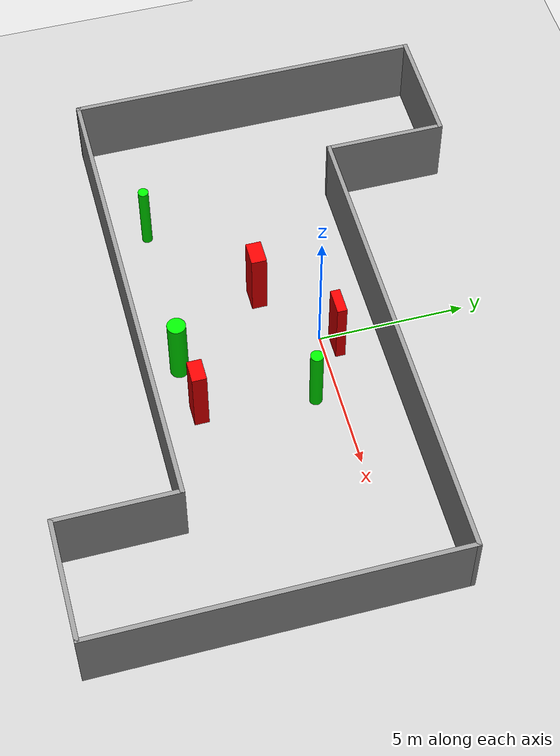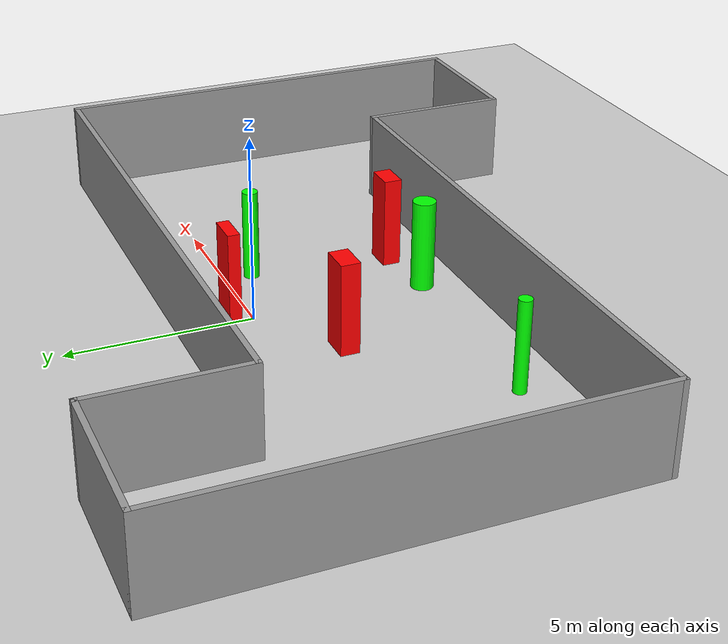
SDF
<sdf version="1.7">
 <world name="default">
  <light name="sun" type="directional">
   <pose>0 0 10 0 -0 0</pose>
   <diffuse>0.8 0.8 0.8 1</diffuse>
   <specular>0.2 0.2 0.2 1</specular>
   <attenuation>
    <range>1000</range>
    <constant>0.9</constant>
    <linear>0.01</linear>
    <quadratic>0.001</quadratic>
   </attenuation>
   <direction>-0.5 0.1 -0.9</direction>
   <spot><inner_angle>0</inner_angle><outer_angle>0</outer_angle><falloff>0</falloff></spot>
  </light>
  <model name="ground_plane">
   <static>1</static>
   <link name="link">
    <collision name="collision">
     <geometry><plane><normal>0 0 1</normal><size>100 100</size></plane></geometry>
     <surface>
      <contact><collide_bitmask>65535</collide_bitmask></contact>
      <friction><ode><mu>100</mu><mu2>50</mu2></ode></friction>
     </surface>
    </collision>
    <visual name="visual">
     <cast_shadows>0</cast_shadows>
     <geometry><plane><normal>0 0 1</normal><size>100 100</size></plane></geometry>
     <material>
      <script><uri>file://media/materials/scripts/gazebo.material</uri><name>Gazebo/Grey</name></script>
     </material>
    </visual>
   </link>
  </model>
  <gravity>0 0 -9.8</gravity>
  <magnetic_field>6e-06 2.3e-05 -4.2e-05</magnetic_field>
  <atmosphere type="adiabatic"/>
  <physics type="ode">
   <max_step_size>0.001</max_step_size>
   <real_time_factor>1</real_time_factor>
   <real_time_update_rate>1000</real_time_update_rate>
  </physics>
  <scene><ambient>0.4 0.4 0.4 1</ambient><background>0.7 0.7 0.7 1</background><shadows>1</shadows></scene>
  <spherical_coordinates>
   <surface_model>EARTH_WGS84</surface_model>
   <latitude_deg>0</latitude_deg>
   <longitude_deg>0</longitude_deg>
   <elevation>0</elevation>
   <heading_deg>0</heading_deg>
  </spherical_coordinates>
  <model name="my_base_walls">
   <link name="Wall_13">
    <collision name="Wall_13_Collision">
     <geometry><box><size>12.15 0.15 2.5</size></box></geometry>
     <pose>0 0 1.25 0 -0 0</pose>
    </collision>
    <visual name="Wall_13_Visual">
     <pose>0 0 1.25 0 -0 0</pose>
     <geometry><box><size>12.15 0.15 2.5</size></box></geometry>
     <material>
      <script><uri>file://media/materials/scripts/gazebo.material</uri><name>Gazebo/Grey</name></script>
      <ambient>1 1 1 1</ambient>
     </material>
     <meta><layer>0</layer></meta>
    </visual>
    <pose>10 -2 0 0 -0 1.5708</pose>
   </link>
   <link name="Wall_15">
    <collision name="Wall_15_Collision">
     <geometry><box><size>16.15 0.15 2.5</size></box></geometry>
     <pose>0 0 1.25 0 -0 0</pose>
    </collision>
    <visual name="Wall_15_Visual">
     <pose>0 0 1.25 0 -0 0</pose>
     <geometry><box><size>16.15 0.15 2.5</size></box></geometry>
     <material>
      <script><uri>file://media/materials/scripts/gazebo.material</uri><name>Gazebo/Grey</name></script>
      <ambient>1 1 1 1</ambient>
     </material>
     <meta><layer>0</layer></meta>
    </visual>
    <pose>2 4 0 0 -0 3.14159</pose>
   </link>
   <link name="Wall_17">
    <collision name="Wall_17_Collision">
     <geometry><box><size>4.15 0.15 2.5</size></box></geometry>
     <pose>0 0 1.25 0 -0 0</pose>
    </collision>
    <visual name="Wall_17_Visual">
     <pose>0 0 1.25 0 -0 0</pose>
     <geometry><box><size>4.15 0.15 2.5</size></box></geometry>
     <material>
      <script><uri>file://media/materials/scripts/gazebo.material</uri><name>Gazebo/Grey</name></script>
      <ambient>1 1 1 1</ambient>
     </material>
     <meta><layer>0</layer></meta>
    </visual>
    <pose>6 -6 0 0 -0 -1.5708</pose>
   </link>
   <link name="Wall_19">
    <collision name="Wall_19_Collision">
     <geometry><box><size>12.15 0.15 2.5</size></box></geometry>
     <pose>0 0 1.25 0 -0 0</pose>
    </collision>
    <visual name="Wall_19_Visual">
     <pose>0 0 1.25 0 -0 0</pose>
     <geometry><box><size>12.15 0.15 2.5</size></box></geometry>
     <material>
      <script><uri>file://media/materials/scripts/gazebo.material</uri><name>Gazebo/Grey</name></script>
      <ambient>1 1 1 1</ambient>
     </material>
     <meta><layer>0</layer></meta>
    </visual>
    <pose>-10 2 0 0 -0 1.5708</pose>
   </link>
   <link name="Wall_21">
    <collision name="Wall_21_Collision">
     <geometry><box><size>4.15 0.15 2.5</size></box></geometry>
     <pose>0 0 1.25 0 -0 0</pose>
    </collision>
    <visual name="Wall_21_Visual">
     <pose>0 0 1.25 0 -0 0</pose>
     <geometry><box><size>4.15 0.15 2.5</size></box></geometry>
     <material>
      <script><uri>file://media/materials/scripts/gazebo.material</uri><name>Gazebo/Grey</name></script>
      <ambient>1 1 1 1</ambient>
     </material>
     <meta><layer>0</layer></meta>
    </visual>
    <pose>-8 8 0 0 -0 0</pose>
   </link>
   <link name="Wall_23">
    <collision name="Wall_23_Collision">
     <geometry><box><size>4.15 0.15 2.5</size></box></geometry>
     <pose>0 0 1.25 0 -0 0</pose>
    </collision>
    <visual name="Wall_23_Visual">
     <pose>0 0 1.25 0 -0 0</pose>
     <geometry><box><size>4.15 0.15 2.5</size></box></geometry>
     <material>
      <script><uri>file://media/materials/scripts/gazebo.material</uri><name>Gazebo/Grey</name></script>
      <ambient>1 1 1 1</ambient>
     </material>
     <meta><layer>0</layer></meta>
    </visual>
    <pose>-6 6 0 0 -0 -1.5708</pose>
   </link>
   <link name="Wall_25">
    <collision name="Wall_25_Collision">
     <geometry><box><size>4.15 0.15 2.5</size></box></geometry>
     <pose>0 0 1.25 0 -0 0</pose>
    </collision>
    <visual name="Wall_25_Visual">
     <pose>0 0 1.25 0 -0 0</pose>
     <geometry><box><size>4.15 0.15 2.5</size></box></geometry>
     <material>
      <script><uri>file://media/materials/scripts/gazebo.material</uri><name>Gazebo/Grey</name></script>
      <ambient>1 1 1 1</ambient>
     </material>
     <meta><layer>0</layer></meta>
    </visual>
    <pose>8 -8 0 0 -0 0</pose>
   </link>
   <link name="Wall_9">
    <collision name="Wall_9_Collision">
     <geometry><box><size>16.15 0.15 2.5</size></box></geometry>
     <pose>0 0 1.25 0 -0 0</pose>
    </collision>
    <visual name="Wall_9_Visual">
     <pose>0 0 1.25 0 -0 0</pose>
     <geometry><box><size>16.15 0.15 2.5</size></box></geometry>
     <material>
      <script><uri>file://media/materials/scripts/gazebo.material</uri><name>Gazebo/Grey</name></script>
      <ambient>1 1 1 1</ambient>
     </material>
     <meta><layer>0</layer></meta>
    </visual>
    <pose>-2 -4 0 0 -0 3.14159</pose>
   </link>
   <static>1</static>
   <pose>-0 -2 0 0 -0 0</pose>
  </model>
  <model name="cylinder1">
   <static>1</static>
   <link name="link">
    <inertial>
     <mass>1</mass>
     <inertia><ixx>0.5</ixx><ixy>0</ixy><ixz>0</ixz><iyy>0.5</iyy><iyz>0</iyz><izz>1</izz></inertia>
    </inertial>
    <collision name="collision">
     <geometry><cylinder><radius>0.21430372901644684</radius><length>2.5</length></cylinder></geometry>
    </collision>
    <visual name="visual">
     <geometry><cylinder><radius>0.21430372901644684</radius><length>2.5</length></cylinder></geometry>
     <material>
      <ambient>0 1 0 1</ambient>
      <diffuse>0 1 0 1</diffuse>
      <specular>0.1 0.1 0.1 1</specular>
      <emissive>0 0 0 0</emissive>
     </material>
    </visual>
   </link>
   <pose>2.3155222630276615 -0.7716998899627852 1.25 0 0 0</pose>
  </model>
  <model name="cylinder2">
   <static>1</static>
   <link name="link">
    <inertial>
     <mass>1</mass>
     <inertia><ixx>0.5</ixx><ixy>0</ixy><ixz>0</ixz><iyy>0.5</iyy><iyz>0</iyz><izz>1</izz></inertia>
    </inertial>
    <collision name="collision">
     <geometry><cylinder><radius>0.31121845683847826</radius><length>2.5</length></cylinder></geometry>
    </collision>
    <visual name="visual">
     <geometry><cylinder><radius>0.31121845683847826</radius><length>2.5</length></cylinder></geometry>
     <material>
      <ambient>0 1 0 1</ambient>
      <diffuse>0 1 0 1</diffuse>
      <specular>0.1 0.1 0.1 1</specular>
      <emissive>0 0 0 0</emissive>
     </material>
    </visual>
   </link>
   <pose>0.026479990698602407 -4.802734021282893 1.25 0 0 0</pose>
  </model>
  <model name="cylinder3">
   <static>1</static>
   <link name="link">
    <inertial>
     <mass>1</mass>
     <inertia><ixx>0.5</ixx><ixy>0</ixy><ixz>0</ixz><iyy>0.5</iyy><iyz>0</iyz><izz>1</izz></inertia>
    </inertial>
    <collision name="collision">
     <geometry><cylinder><radius>0.1780238940336196</radius><length>2.5</length></cylinder></geometry>
    </collision>
    <visual name="visual">
     <geometry><cylinder><radius>0.1780238940336196</radius><length>2.5</length></cylinder></geometry>
     <material>
      <ambient>0 1 0 1</ambient>
      <diffuse>0 1 0 1</diffuse>
      <specular>0.1 0.1 0.1 1</specular>
      <emissive>0 0 0 0</emissive>
     </material>
    </visual>
   </link>
   <pose>-5.684947906005096 -4.631189927139939 1.25 0 0 0</pose>
  </model>
  <model name="box1">
   <static>1</static>
   <link name="link">
    <inertial>
     <mass>1</mass>
     <inertia><ixx>0.083</ixx><ixy>0</ixy><ixz>0</ixz><iyy>0.083</iyy><iyz>0</iyz><izz>0.083</izz></inertia>
    </inertial>
    <collision name="collision">
     <geometry><box><size>0.8212300130732033 0.5197985240911427 2.5</size></box></geometry>
    </collision>
    <visual name="visual">
     <geometry><box><size>0.8212300130732033 0.5197985240911427 2.5</size></box></geometry>
     <material>
      <ambient>1 0 0 1</ambient>
      <diffuse>1 0 0 1</diffuse>
      <specular>0.1 0.1 0.1 1</specular>
      <emissive>0 0 0 0</emissive>
     </material>
    </visual>
    <sensor name="my_contact" type="contact">
     <contact><collision>box_collision</collision><topic>__default_topic__</topic></contact>
    </sensor>
   </link>
   <pose>-2.19601117965521 -1.5914319735682207 1.25 0 0 0</pose>
  </model>
  <model name="box2">
   <static>1</static>
   <link name="link">
    <inertial>
     <mass>1</mass>
     <inertia><ixx>0.083</ixx><ixy>0</ixy><ixz>0</ixz><iyy>0.083</iyy><iyz>0</iyz><izz>0.083</izz></inertia>
    </inertial>
    <collision name="collision">
     <geometry><box><size>0.8735637995373613 0.3284995373690697 2.5</size></box></geometry>
    </collision>
    <visual name="visual">
     <geometry><box><size>0.8735637995373613 0.3284995373690697 2.5</size></box></geometry>
     <material>
      <ambient>1 0 0 1</ambient>
      <diffuse>1 0 0 1</diffuse>
      <specular>0.1 0.1 0.1 1</specular>
      <emissive>0 0 0 0</emissive>
     </material>
    </visual>
    <sensor name="my_contact" type="contact">
     <contact><collision>box_collision</collision><topic>__default_topic__</topic></contact>
    </sensor>
   </link>
   <pose>0.4094311496736722 0.48767780564797736 1.25 0 0 0</pose>
  </model>
  <model name="box3">
   <static>1</static>
   <link name="link">
    <inertial>
     <mass>1</mass>
     <inertia><ixx>0.083</ixx><ixy>0</ixy><ixz>0</ixz><iyy>0.083</iyy><iyz>0</iyz><izz>0.083</izz></inertia>
    </inertial>
    <collision name="collision">
     <geometry><box><size>0.7744615236993477 0.4852561623670376 2.5</size></box></geometry>
    </collision>
    <visual name="visual">
     <geometry><box><size>0.7744615236993477 0.4852561623670376 2.5</size></box></geometry>
     <material>
      <ambient>1 0 0 1</ambient>
      <diffuse>1 0 0 1</diffuse>
      <specular>0.1 0.1 0.1 1</specular>
      <emissive>0 0 0 0</emissive>
     </material>
    </visual>
    <sensor name="my_contact" type="contact">
     <contact><collision>box_collision</collision><topic>__default_topic__</topic></contact>
    </sensor>
   </link>
   <pose>1.8762714841357298 -4.575029217048877 1.25 0 0 0</pose>
  </model>
 </world>
</sdf>
